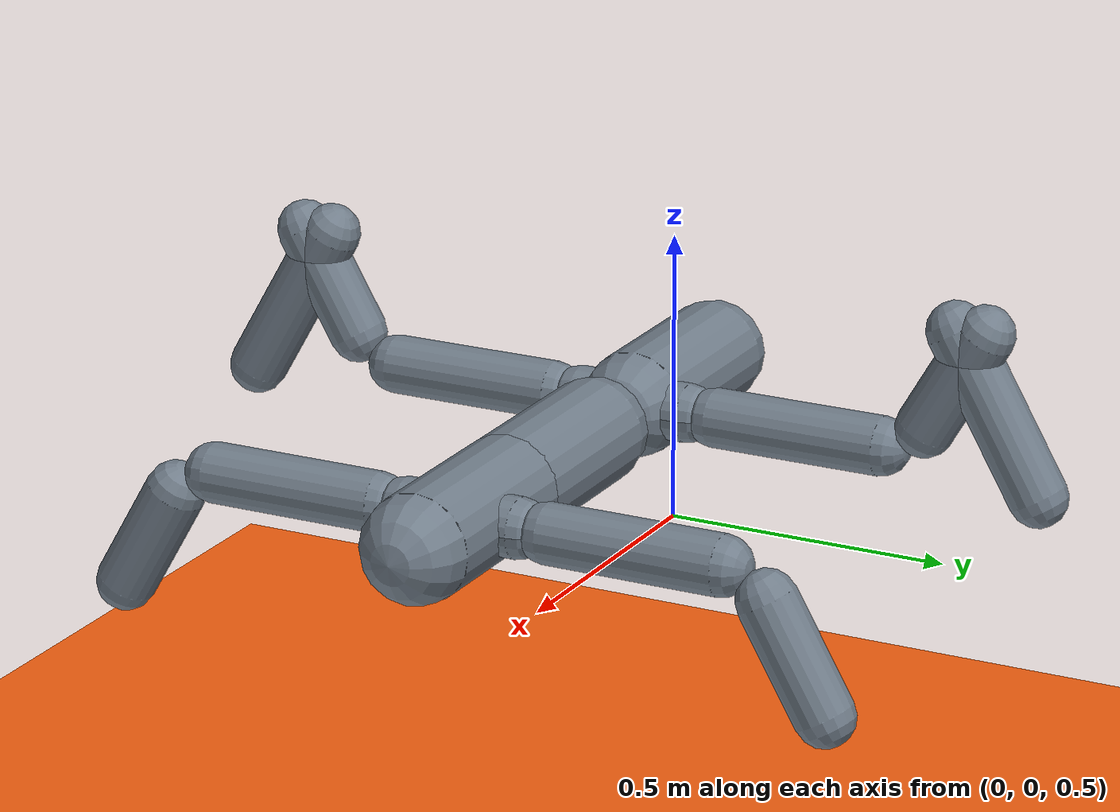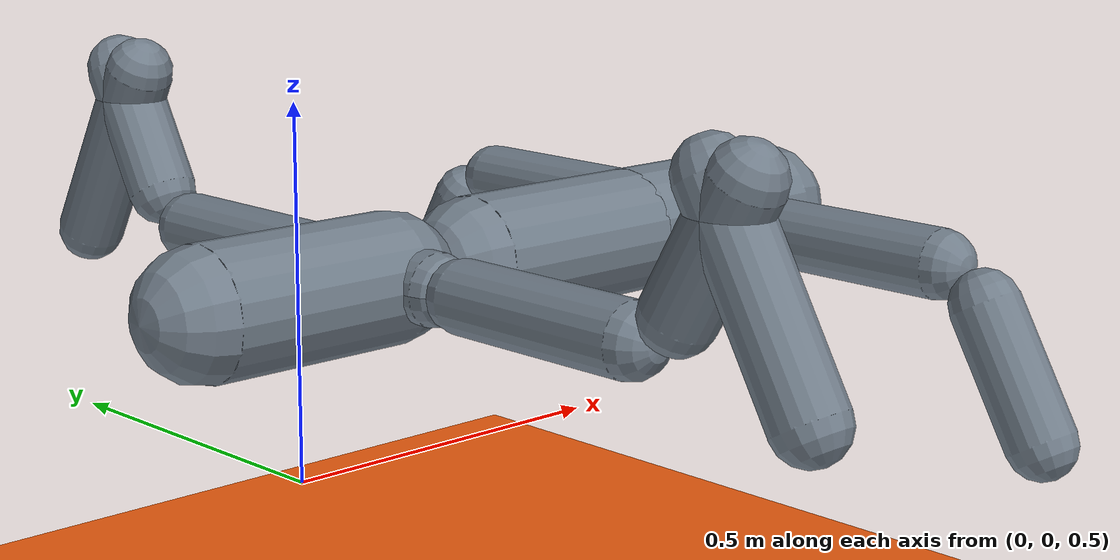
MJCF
<?xml version="1.0" ?>
<mujoco model="your_robot_name">

    <compiler inertiafromgeom="true" angle="radian"/>

    <default>
        <joint armature="0.01" damping="0.1" limited="true"/>
        <geom condim="3" density="5.0" friction="1.5 0.1 0.1" margin="0.01" rgba="0.97 0.38 0.06 1"/>
    </default>

    <size nconmax="50" njmax="200" nstack="10000"/>
    <visual>
        <map force="0.1" zfar="30"/>
        <rgba haze="0.15 0.25 0.35 1"/>
        <quality shadowsize="2048"/>
        <global offwidth="800" offheight="800"/>
    </visual>
    <asset>
        <texture type="skybox" builtin="gradient" rgb1="0.3 0.5 0.7" rgb2="0 0 0" width="512" height="512"/>
        <texture name="texplane" type="2d" builtin="checker" rgb1=".2 .3 .4" rgb2=".1 0.15 0.2" width="512" height="512" mark="cross" markrgb=".8 .8 .8"/>
        <texture name="texgeom" type="cube" builtin="flat" mark="cross" width="127" height="1278" rgb1="0.8 0.6 0.4" rgb2="0.8 0.6 0.4" markrgb="1 1 1" random="0.01"/>
        <material name="matplane" reflectance="0.3" texture="texplane" texrepeat="1 1" texuniform="true"/>
        <material name="matgeom" texture="texgeom" texuniform="true" rgba="0.8 0.6 .4 1"/>
    </asset>
    <actuator>
        <motor ctrllimited="true" ctrlrange="-1 1" joint="joint_1" gear="10"/>
        <motor ctrllimited="true" ctrlrange="-1 1" joint="joint_4" gear="10"/>
        <motor ctrllimited="true" ctrlrange="-1 1" joint="joint_5" gear="10"/>
        <motor ctrllimited="true" ctrlrange="-1 1" joint="joint_6" gear="10"/>
        <motor ctrllimited="true" ctrlrange="-1 1" joint="joint_9" gear="10"/>
        <motor ctrllimited="true" ctrlrange="-1 1" joint="joint_10" gear="10"/>
        <motor ctrllimited="true" ctrlrange="-1 1" joint="joint_11" gear="10"/>
        <motor ctrllimited="true" ctrlrange="-1 1" joint="joint_12" gear="10"/>
        <motor ctrllimited="true" ctrlrange="-1 1" joint="joint_13" gear="10"/>
        <motor ctrllimited="true" ctrlrange="-1 1" joint="joint_14" gear="10"/>
        <motor ctrllimited="true" ctrlrange="-1 1" joint="joint_15" gear="10"/>
        <motor ctrllimited="true" ctrlrange="-1 1" joint="joint_16" gear="10"/>
    </actuator>
    <compiler angle="radian"/>

    <statistic meansize="0.19" extent="1.7" center="0.375 0 0.00334936"/>

    <worldbody>

        <geom name="floor" pos="0 0 0" size="0 0 .25" type="plane" material="matplane" condim="3"/>
        <light directional="false" diffuse=".2 .2 .2" specular="0 0 0" pos="0 0 5" dir="0 0 -1" castshadow="false"/>
        <light mode="targetbodycom" target="root" directional="false" diffuse=".8 .8 .8" specular="0.3 0.3 0.3" pos="0 0 4.0" dir="0 0 -1"/>
        <body name="root" pos="0 0 0.75">
            <freejoint name="root"/>
            <geom size="0.09 0.15" quat="0.707388 0 -0.706825 0" type="capsule" rgba="0.45 0.5 0.55 1"/>

            <geom size="0.05 0.1" pos="0.15 0 0" quat="0.500199 0.499801 -0.499801 0.500199" type="capsule" rgba="0.45 0.5 0.55 1"/>

            <geom size="0.05 0.1" pos="0.15 0 0" quat="0.500199 -0.499801 -0.499801 -0.500199" type="capsule" rgba="0.45 0.5 0.55 1"/>

            <body name="link_1" pos="0.3 0 0">

                <joint name="joint_1" pos="0 0 0" axis="0 0 1" range="-1.5 1.5" frictionloss="0.9"/>

                <geom size="0.09 0.15" pos="0.15 0 0" quat="0.707388 0 -0.706825 0" type="capsule" rgba="0.45 0.5 0.55 1"/>

                <body name="link_4" pos="0.3 0 0">

                    <joint name="joint_4" pos="0 0 0" axis="0 1 0" range="-1.5 1.5" frictionloss="0.9"/>

                    <geom size="0.09 0.15" pos="0.15 0 0" quat="0.707388 0 -0.706825 0" type="capsule" rgba="0.45 0.5 0.55 1"/>

                    <geom size="0.05 0.1" pos="0.15 0 0" quat="0.500199 0.499801 -0.499801 0.500199" type="capsule" rgba="0.45 0.5 0.55 1"/>

                    <geom size="0.05 0.1" pos="0.15 0 0" quat="0.500199 -0.499801 -0.499801 -0.500199" type="capsule" rgba="0.45 0.5 0.55 1"/>

                    <body name="link_11" pos="0.15 0.2 0" quat="0.707107 0 0 0.707107">

                        <joint name="joint_11" pos="0 0 0" axis="0 1 0" range="-1.5 1.5" frictionloss="0.9"/>

                        <geom size="0.05 0.15" pos="0.1 0 0" quat="0.707388 0 -0.706825 0" type="capsule" rgba="0.45 0.5 0.55 1"/>

                        <body name="link_15_foot" pos="0.3 0 0" quat="0.866025 0 0.5 0">

                            <joint name="joint_15" pos="0 0 0" axis="0 0 1" range="-1.5 1.5" frictionloss="0.9"/>

                            <geom size="0.05 0.1" pos="0.15 0 0" quat="0.707388 0 -0.706825 0" type="capsule" rgba="0.45 0.5 0.55 1"/>

                        </body>

                    </body>

                    <body name="link_12" pos="0.15 -0.2 0" quat="0.707107 0 0 -0.707107">

                        <joint name="joint_12" pos="0 0 0" axis="0 1 0" range="-1.5 1.5" frictionloss="0.9"/>

                        <geom size="0.05 0.15" pos="0.1 0 0" quat="0.707388 0 -0.706825 0" type="capsule" rgba="0.45 0.5 0.55 1"/>

                        <body name="link_16_foot" pos="0.3 0 0" quat="0.866025 0 0.5 0">

                            <joint name="joint_16" pos="0 0 0" axis="0 0 -1" range="-1.5 1.5" frictionloss="0.9"/>

                            <geom size="0.05 0.1" pos="0.15 0 0" quat="0.707388 0 -0.706825 0" type="capsule" rgba="0.45 0.5 0.55 1"/>

                        </body>

                    </body>

                </body>

            </body>

            <body name="link_5" pos="0.15 0.2 0" quat="0.707107 0 0 0.707107">

                <joint name="joint_5" pos="0 0 0" axis="0 1 0" range="-1.5 1.5" frictionloss="0.9"/>

                <geom size="0.05 0.15" pos="0.1 0 0" quat="0.707388 0 -0.706825 0" type="capsule" rgba="0.45 0.5 0.55 1"/>

                <body name="link_9" pos="0.3 0 0" quat="0.866025 0 -0.5 0">

                    <joint name="joint_9" pos="0 0 0" axis="0 0 1" range="-1.5 1.5" frictionloss="0.9"/>

                    <geom size="0.05 0.1" pos="0.15 0 0" quat="0.707388 0 -0.706825 0" type="capsule" rgba="0.45 0.5 0.55 1"/>

                    <body name="link_13_foot" pos="0.2 0 0" quat="0.5 0 0.866025 0">

                        <joint name="joint_13" pos="0 0 0" axis="0 0 1" range="-1.5 1.5" frictionloss="0.9"/>

                        <geom size="0.05 0.15" pos="0.1 0 0" quat="0.707388 0 -0.706825 0" type="capsule" rgba="0.45 0.5 0.55 1"/>

                    </body>

                </body>

            </body>

            <body name="link_6" pos="0.15 -0.2 0" quat="0.707107 0 0 -0.707107">

                <joint name="joint_6" pos="0 0 0" axis="0 1 0" range="-1.5 1.5" frictionloss="0.9"/>

                <geom size="0.05 0.15" pos="0.1 0 0" quat="0.707388 0 -0.706825 0" type="capsule" rgba="0.45 0.5 0.55 1"/>

                <body name="link_10" pos="0.3 0 0" quat="0.866025 0 -0.5 0">

                    <joint name="joint_10" pos="0 0 0" axis="0 0 -1" range="-1.5 1.5" frictionloss="0.9"/>

                    <geom size="0.05 0.1" pos="0.15 0 0" quat="0.707388 0 -0.706825 0" type="capsule" rgba="0.45 0.5 0.55 1"/>

                    <body name="link_14_foot" pos="0.2 0 0" quat="0.5 0 0.866025 0">

                        <joint name="joint_14" pos="0 0 0" axis="0 0 -1" range="-1.5 1.5" frictionloss="0.9"/>

                        <geom size="0.05 0.15" pos="0.1 0 0" quat="0.707388 0 -0.706825 0" type="capsule" rgba="0.45 0.5 0.55 1"/>

                    </body>

                </body>

            </body>

        </body>
    </worldbody>

</mujoco>
